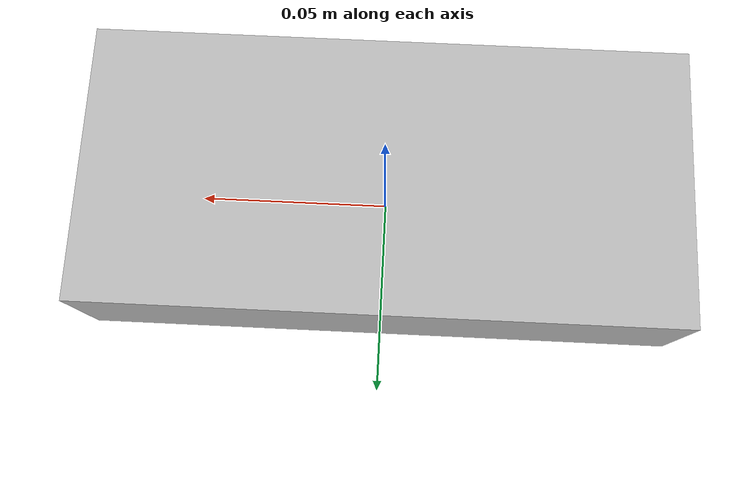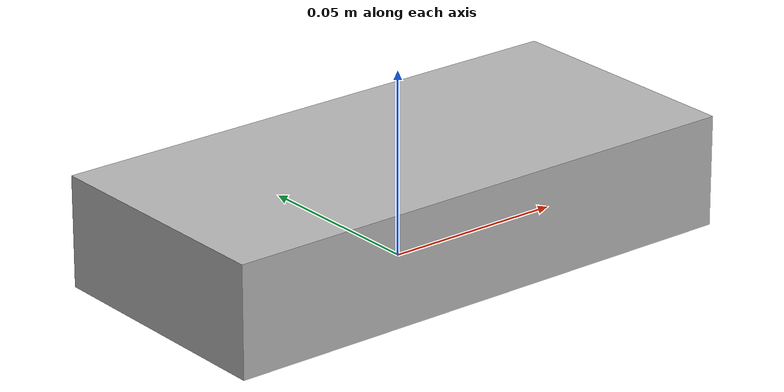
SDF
<?xml version='1.0'?>
<sdf version="1.5">
<model name="box">
	<pose>0 0 0.015 0 0 0</pose> <!-- to raise the box above ground plane -->
	<static>false</static>

		<link name="root">
			<inertial>
			   <pose>0.0 0.0 0.0 0 -0 0</pose>
        		   <mass>0.5935</mass>
        		   <inertia>
        		         <ixx>0.01</ixx>
        		         <ixy>-4.51893e-06</ixy>
        		         <ixz>0.000567785</ixz>
        		         <iyy>0.01</iyy>
        		         <iyz>-6.62361e-07</iyz>
        		         <izz>0.01</izz>
        		   </inertia>
      		</inertial>
      		<collision name='root_collision'>
      				<pose>0.0 0.0 0.0 0 -0 0</pose>
        		<geometry>
          			<box>
            			<size>0.15 0.07 0.03</size>
          			</box>
        		</geometry>
        		<max_contacts>4</max_contacts>
        		<surface>
          			<contact>
            			<ode>

              				<soft_erp>0.2</soft_erp>
              				<soft_cfm>0</soft_cfm>
              				<kp>18000000</kp>
              				<kd>100</kd>
              				<max_vel>100</max_vel>
              				<min_depth>0.0001</min_depth>
            			</ode>

                </contact>
          			<friction>
            			<ode>

              				<mu>1</mu>

              				<mu2>1</mu2>

              				<fdir1>0 0 0</fdir1>
              				<slip1>0</slip1>
              				<slip2>0</slip2>

            			</ode>
          			</friction>
          			<bounce>
            			<restitution_coefficient>0</restitution_coefficient>
            			<threshold>100000</threshold>
          			</bounce>
        		</surface>
      		</collision>

			<visual name="root_visual">
				<geometry>
						<box>
					            <size>0.15 0.07 0.03</size>
					        </box>

				</geometry>
			</visual>

		</link>

		<plugin name="push" filename="/home/icub/Software/gazebo_yarp_plugins/build/libgazebo_yarp_externalwrench.so"/>

</model>
</sdf>
